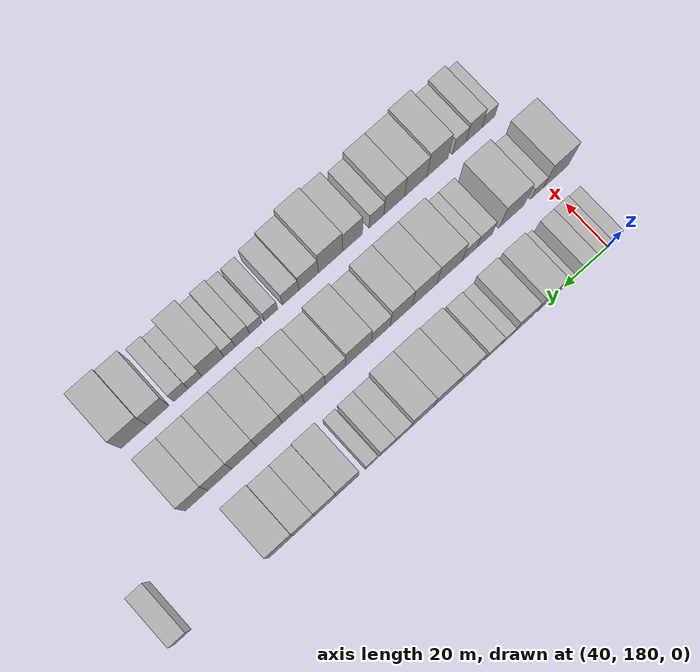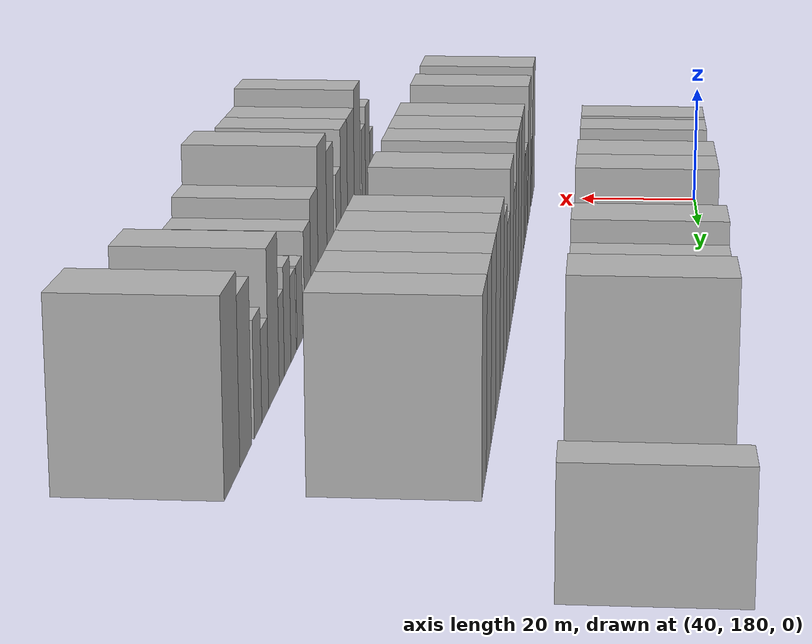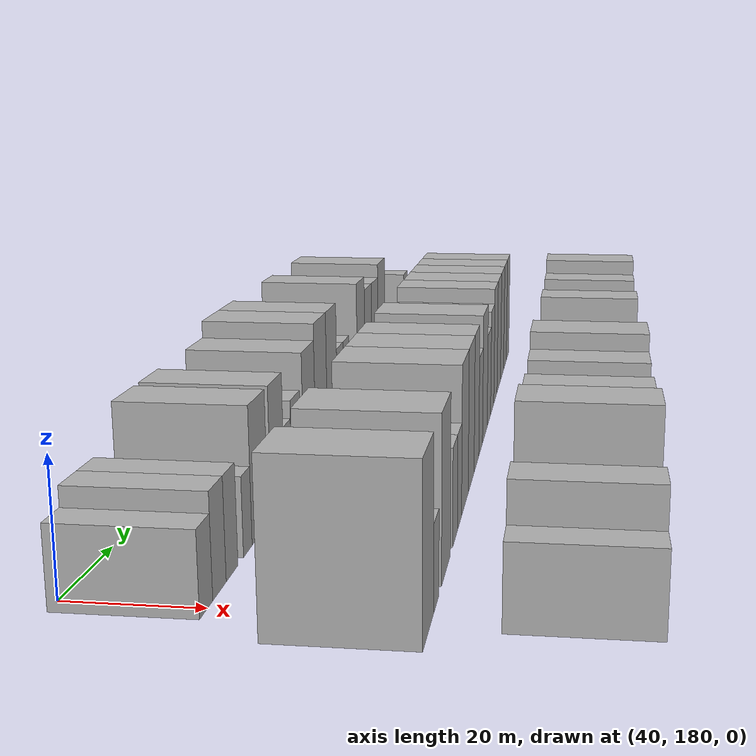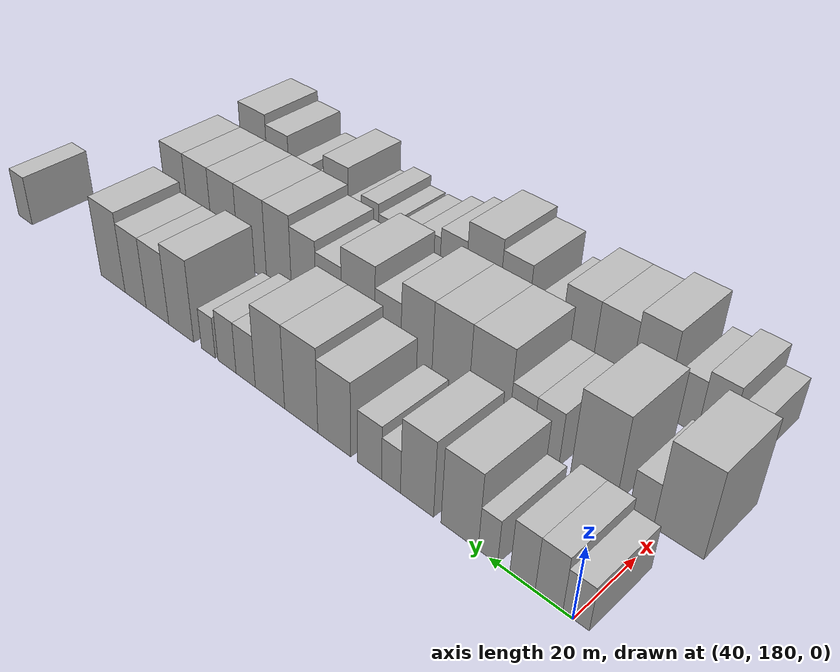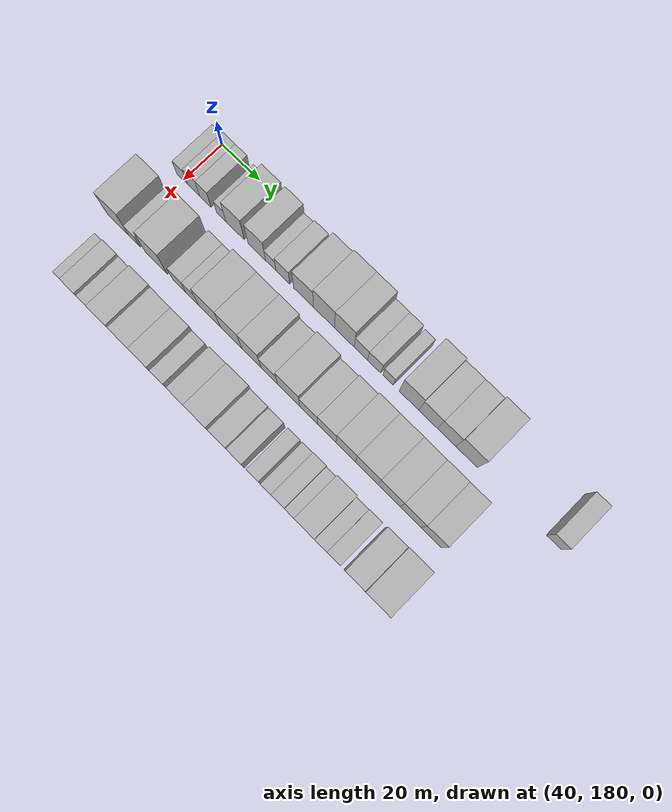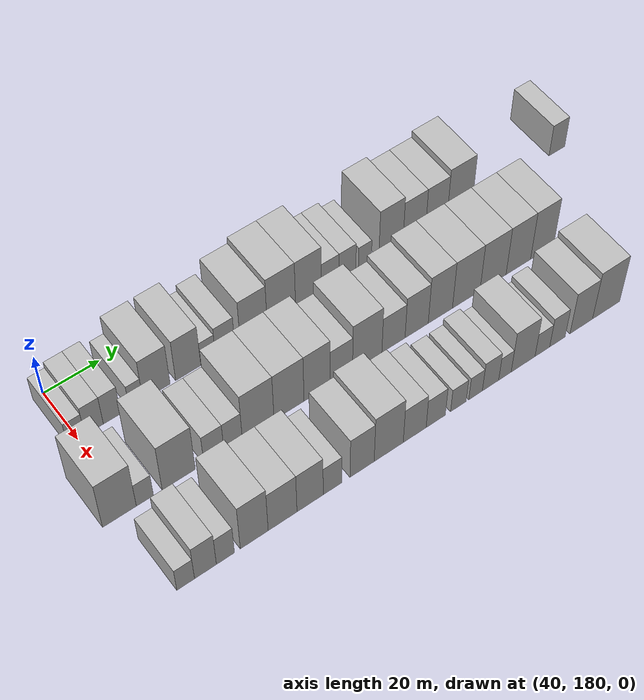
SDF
<sdf version="1.6">
 <world name="default">
  <model name="building_61">
   <static>1</static>
   <pose>50.0000 179.4068 0 0.000000 0.000000 0.000000</pose>
   <link name="link">
    <pose>0 0 6.00 0 0 0</pose>
    <collision name="collision"><geometry><box><size>20.0000 5.9792 12.0000</size></box></geometry></collision>
    <visual name="visual">
     <cast_shadows>0</cast_shadows>
     <geometry><box><size>20.0000 5.9792 12.0000</size></box></geometry>
     <material>
      <script>
       <uri>model://HANNAS_wall/materials/scripts</uri>
       <uri>model://HANNAS_wall/materials/textures</uri>
       <name>vrc/HANNAS_wall</name>
      </script>
     </material>
    </visual>
   </link>
  </model>
  <model name="building_62">
   <static>1</static>
   <pose>50.0000 185.6380 0 0.000000 0.000000 0.000000</pose>
   <link name="link">
    <pose>0 0 7.50 0 0 0</pose>
    <collision name="collision"><geometry><box><size>20.0000 6.4833 15.0000</size></box></geometry></collision>
    <visual name="visual">
     <cast_shadows>0</cast_shadows>
     <geometry><box><size>20.0000 6.4833 15.0000</size></box></geometry>
     <material>
      <script>
       <uri>model://HANNAS_wall/materials/scripts</uri>
       <uri>model://HANNAS_wall/materials/textures</uri>
       <name>vrc/HANNAS_wall</name>
      </script>
     </material>
    </visual>
   </link>
  </model>
  <model name="building_63">
   <static>1</static>
   <pose>50.0000 191.9270 0 0.000000 0.000000 0.000000</pose>
   <link name="link">
    <pose>0 0 7.50 0 0 0</pose>
    <collision name="collision"><geometry><box><size>20.0000 6.0946 15.0000</size></box></geometry></collision>
    <visual name="visual">
     <cast_shadows>0</cast_shadows>
     <geometry><box><size>20.0000 6.0946 15.0000</size></box></geometry>
     <material>
      <script>
       <uri>model://HANNAS_wall/materials/scripts</uri>
       <uri>model://HANNAS_wall/materials/textures</uri>
       <name>vrc/HANNAS_wall</name>
      </script>
     </material>
    </visual>
   </link>
  </model>
  <model name="building_64">
   <static>1</static>
   <pose>50.0000 200.4225 0 0.000000 0.000000 0.000000</pose>
   <link name="link">
    <pose>0 0 6.00 0 0 0</pose>
    <collision name="collision"><geometry><box><size>20.0000 4.8964 12.0000</size></box></geometry></collision>
    <visual name="visual">
     <cast_shadows>0</cast_shadows>
     <geometry><box><size>20.0000 4.8964 12.0000</size></box></geometry>
     <material>
      <script>
       <uri>model://HANNAS_wall/materials/scripts</uri>
       <uri>model://HANNAS_wall/materials/textures</uri>
       <name>vrc/HANNAS_wall</name>
      </script>
     </material>
    </visual>
   </link>
  </model>
  <model name="building_65">
   <static>1</static>
   <pose>50.0000 207.7324 0 0.000000 0.000000 0.000000</pose>
   <link name="link">
    <pose>0 0 10.50 0 0 0</pose>
    <collision name="collision"><geometry><box><size>20.0000 9.7234 21.0000</size></box></geometry></collision>
    <visual name="visual">
     <cast_shadows>0</cast_shadows>
     <geometry><box><size>20.0000 9.7234 21.0000</size></box></geometry>
     <material>
      <script>
       <uri>model://HANNAS_wall/materials/scripts</uri>
       <uri>model://HANNAS_wall/materials/textures</uri>
       <name>vrc/HANNAS_wall</name>
      </script>
     </material>
    </visual>
   </link>
  </model>
  <model name="building_66">
   <static>1</static>
   <pose>50.0000 219.1770 0 0.000000 0.000000 0.000000</pose>
   <link name="link">
    <pose>0 0 10.50 0 0 0</pose>
    <collision name="collision"><geometry><box><size>20.0000 9.1657 21.0000</size></box></geometry></collision>
    <visual name="visual">
     <cast_shadows>0</cast_shadows>
     <geometry><box><size>20.0000 9.1657 21.0000</size></box></geometry>
     <material>
      <script>
       <uri>model://HANNAS_wall/materials/scripts</uri>
       <uri>model://HANNAS_wall/materials/textures</uri>
       <name>vrc/HANNAS_wall</name>
      </script>
     </material>
    </visual>
   </link>
  </model>
  <model name="building_67">
   <static>1</static>
   <pose>50.0000 226.4605 0 0.000000 0.000000 0.000000</pose>
   <link name="link">
    <pose>0 0 6.00 0 0 0</pose>
    <collision name="collision"><geometry><box><size>20.0000 5.4013 12.0000</size></box></geometry></collision>
    <visual name="visual">
     <cast_shadows>0</cast_shadows>
     <geometry><box><size>20.0000 5.4013 12.0000</size></box></geometry>
     <material>
      <script>
       <uri>model://HANNAS_wall/materials/scripts</uri>
       <uri>model://HANNAS_wall/materials/textures</uri>
       <name>vrc/HANNAS_wall</name>
      </script>
     </material>
    </visual>
   </link>
  </model>
  <model name="building_68">
   <static>1</static>
   <pose>50.0000 232.7259 0 0.000000 0.000000 0.000000</pose>
   <link name="link">
    <pose>0 0 7.50 0 0 0</pose>
    <collision name="collision"><geometry><box><size>20.0000 7.1296 15.0000</size></box></geometry></collision>
    <visual name="visual">
     <cast_shadows>0</cast_shadows>
     <geometry><box><size>20.0000 7.1296 15.0000</size></box></geometry>
     <material>
      <script>
       <uri>model://HANNAS_wall/materials/scripts</uri>
       <uri>model://HANNAS_wall/materials/textures</uri>
       <name>vrc/HANNAS_wall</name>
      </script>
     </material>
    </visual>
   </link>
  </model>
  <model name="building_69">
   <static>1</static>
   <pose>50.0000 243.3991 0 0.000000 0.000000 0.000000</pose>
   <link name="link">
    <pose>0 0 10.50 0 0 0</pose>
    <collision name="collision"><geometry><box><size>20.0000 10.2167 21.0000</size></box></geometry></collision>
    <visual name="visual">
     <cast_shadows>0</cast_shadows>
     <geometry><box><size>20.0000 10.2167 21.0000</size></box></geometry>
     <material>
      <script>
       <uri>model://HANNAS_wall/materials/scripts</uri>
       <uri>model://HANNAS_wall/materials/textures</uri>
       <name>vrc/HANNAS_wall</name>
      </script>
     </material>
    </visual>
   </link>
  </model>
  <model name="building_70">
   <static>1</static>
   <pose>50.0000 253.9183 0 0.000000 0.000000 0.000000</pose>
   <link name="link">
    <pose>0 0 12.00 0 0 0</pose>
    <collision name="collision"><geometry><box><size>20.0000 10.8217 24.0000</size></box></geometry></collision>
    <visual name="visual">
     <cast_shadows>0</cast_shadows>
     <geometry><box><size>20.0000 10.8217 24.0000</size></box></geometry>
     <material>
      <script>
       <uri>model://HANNAS_wall/materials/scripts</uri>
       <uri>model://HANNAS_wall/materials/textures</uri>
       <name>vrc/HANNAS_wall</name>
      </script>
     </material>
    </visual>
   </link>
  </model>
  <model name="building_71">
   <static>1</static>
   <pose>50.0000 264.3221 0 0.000000 0.000000 0.000000</pose>
   <link name="link">
    <pose>0 0 12.00 0 0 0</pose>
    <collision name="collision"><geometry><box><size>20.0000 9.9859 24.0000</size></box></geometry></collision>
    <visual name="visual">
     <cast_shadows>0</cast_shadows>
     <geometry><box><size>20.0000 9.9859 24.0000</size></box></geometry>
     <material>
      <script>
       <uri>model://HANNAS_wall/materials/scripts</uri>
       <uri>model://HANNAS_wall/materials/textures</uri>
       <name>vrc/HANNAS_wall</name>
      </script>
     </material>
    </visual>
   </link>
  </model>
  <model name="building_72">
   <static>1</static>
   <pose>50.0000 272.7341 0 0.000000 0.000000 0.000000</pose>
   <link name="link">
    <pose>0 0 7.50 0 0 0</pose>
    <collision name="collision"><geometry><box><size>20.0000 6.8380 15.0000</size></box></geometry></collision>
    <visual name="visual">
     <cast_shadows>0</cast_shadows>
     <geometry><box><size>20.0000 6.8380 15.0000</size></box></geometry>
     <material>
      <script>
       <uri>model://HANNAS_wall/materials/scripts</uri>
       <uri>model://HANNAS_wall/materials/textures</uri>
       <name>vrc/HANNAS_wall</name>
      </script>
     </material>
    </visual>
   </link>
  </model>
  <model name="building_73">
   <static>1</static>
   <pose>50.0000 279.4565 0 0.000000 0.000000 0.000000</pose>
   <link name="link">
    <pose>0 0 7.50 0 0 0</pose>
    <collision name="collision"><geometry><box><size>20.0000 6.6070 15.0000</size></box></geometry></collision>
    <visual name="visual">
     <cast_shadows>0</cast_shadows>
     <geometry><box><size>20.0000 6.6070 15.0000</size></box></geometry>
     <material>
      <script>
       <uri>model://HANNAS_wall/materials/scripts</uri>
       <uri>model://HANNAS_wall/materials/textures</uri>
       <name>vrc/HANNAS_wall</name>
      </script>
     </material>
    </visual>
   </link>
  </model>
  <model name="building_74">
   <static>1</static>
   <pose>50.0000 286.3428 0 0.000000 0.000000 0.000000</pose>
   <link name="link">
    <pose>0 0 6.00 0 0 0</pose>
    <collision name="collision"><geometry><box><size>20.0000 5.1656 12.0000</size></box></geometry></collision>
    <visual name="visual">
     <cast_shadows>0</cast_shadows>
     <geometry><box><size>20.0000 5.1656 12.0000</size></box></geometry>
     <material>
      <script>
       <uri>model://HANNAS_wall/materials/scripts</uri>
       <uri>model://HANNAS_wall/materials/textures</uri>
       <name>vrc/HANNAS_wall</name>
      </script>
     </material>
    </visual>
   </link>
  </model>
  <model name="building_75">
   <static>1</static>
   <pose>50.0000 296.7853 0 0.000000 0.000000 0.000000</pose>
   <link name="link">
    <pose>0 0 12.00 0 0 0</pose>
    <collision name="collision"><geometry><box><size>20.0000 9.7195 24.0000</size></box></geometry></collision>
    <visual name="visual">
     <cast_shadows>0</cast_shadows>
     <geometry><box><size>20.0000 9.7195 24.0000</size></box></geometry>
     <material>
      <script>
       <uri>model://HANNAS_wall/materials/scripts</uri>
       <uri>model://HANNAS_wall/materials/textures</uri>
       <name>vrc/HANNAS_wall</name>
      </script>
     </material>
    </visual>
   </link>
  </model>
  <model name="building_76">
   <static>1</static>
   <pose>50.0000 306.2519 0 0.000000 0.000000 0.000000</pose>
   <link name="link">
    <pose>0 0 10.50 0 0 0</pose>
    <collision name="collision"><geometry><box><size>20.0000 9.2137 21.0000</size></box></geometry></collision>
    <visual name="visual">
     <cast_shadows>0</cast_shadows>
     <geometry><box><size>20.0000 9.2137 21.0000</size></box></geometry>
     <material>
      <script>
       <uri>model://HANNAS_wall/materials/scripts</uri>
       <uri>model://HANNAS_wall/materials/textures</uri>
       <name>vrc/HANNAS_wall</name>
      </script>
     </material>
    </visual>
   </link>
  </model>
  <model name="building_77">
   <static>1</static>
   <pose>50.0000 315.3175 0 0.000000 0.000000 0.000000</pose>
   <link name="link">
    <pose>0 0 10.50 0 0 0</pose>
    <collision name="collision"><geometry><box><size>20.0000 8.9175 21.0000</size></box></geometry></collision>
    <visual name="visual">
     <cast_shadows>0</cast_shadows>
     <geometry><box><size>20.0000 8.9175 21.0000</size></box></geometry>
     <material>
      <script>
       <uri>model://HANNAS_wall/materials/scripts</uri>
       <uri>model://HANNAS_wall/materials/textures</uri>
       <name>vrc/HANNAS_wall</name>
      </script>
     </material>
    </visual>
   </link>
  </model>
  <model name="building_78">
   <static>1</static>
   <pose>50.0000 325.0441 0 0.000000 0.000000 0.000000</pose>
   <link name="link">
    <pose>0 0 12.00 0 0 0</pose>
    <collision name="collision"><geometry><box><size>20.0000 10.5357 24.0000</size></box></geometry></collision>
    <visual name="visual">
     <cast_shadows>0</cast_shadows>
     <geometry><box><size>20.0000 10.5357 24.0000</size></box></geometry>
     <material>
      <script>
       <uri>model://HANNAS_wall/materials/scripts</uri>
       <uri>model://HANNAS_wall/materials/textures</uri>
       <name>vrc/HANNAS_wall</name>
      </script>
     </material>
    </visual>
   </link>
  </model>
  <model name="building_79">
   <static>1</static>
   <pose>50.0000 366.6087 0 0.000000 0.000000 0.000000</pose>
   <link name="link">
    <pose>0 0 7.50 0 0 0</pose>
    <collision name="collision"><geometry><box><size>20.0000 6.8645 15.0000</size></box></geometry></collision>
    <visual name="visual">
     <cast_shadows>0</cast_shadows>
     <geometry><box><size>20.0000 6.8645 15.0000</size></box></geometry>
     <material>
      <script>
       <uri>model://HANNAS_wall/materials/scripts</uri>
       <uri>model://HANNAS_wall/materials/textures</uri>
       <name>vrc/HANNAS_wall</name>
      </script>
     </material>
    </visual>
   </link>
  </model>
  <model name="building_133">
   <static>1</static>
   <pose>79.0000 176.2085 0 0.000000 0.000000 0.000000</pose>
   <link name="link">
    <pose>0 0 12.00 0 0 0</pose>
    <collision name="collision"><geometry><box><size>20.0000 11.4571 24.0000</size></box></geometry></collision>
    <visual name="visual">
     <cast_shadows>0</cast_shadows>
     <geometry><box><size>20.0000 11.4571 24.0000</size></box></geometry>
     <material>
      <script>
       <uri>model://HANNAS_wall/materials/scripts</uri>
       <uri>model://HANNAS_wall/materials/textures</uri>
       <name>vrc/HANNAS_wall</name>
      </script>
     </material>
    </visual>
   </link>
  </model>
  <model name="building_134">
   <static>1</static>
   <pose>79.0000 184.8714 0 0.000000 0.000000 0.000000</pose>
   <link name="link">
    <pose>0 0 6.00 0 0 0</pose>
    <collision name="collision"><geometry><box><size>20.0000 5.8687 12.0000</size></box></geometry></collision>
    <visual name="visual">
     <cast_shadows>0</cast_shadows>
     <geometry><box><size>20.0000 5.8687 12.0000</size></box></geometry>
     <material>
      <script>
       <uri>model://HANNAS_wall/materials/scripts</uri>
       <uri>model://HANNAS_wall/materials/textures</uri>
       <name>vrc/HANNAS_wall</name>
      </script>
     </material>
    </visual>
   </link>
  </model>
  <model name="building_135">
   <static>1</static>
   <pose>79.0000 196.5818 0 0.000000 0.000000 0.000000</pose>
   <link name="link">
    <pose>0 0 12.00 0 0 0</pose>
    <collision name="collision"><geometry><box><size>20.0000 11.5522 24.0000</size></box></geometry></collision>
    <visual name="visual">
     <cast_shadows>0</cast_shadows>
     <geometry><box><size>20.0000 11.5522 24.0000</size></box></geometry>
     <material>
      <script>
       <uri>model://HANNAS_wall/materials/scripts</uri>
       <uri>model://HANNAS_wall/materials/textures</uri>
       <name>vrc/HANNAS_wall</name>
      </script>
     </material>
    </visual>
   </link>
  </model>
  <model name="building_136">
   <static>1</static>
   <pose>79.0000 208.9275 0 0.000000 0.000000 0.000000</pose>
   <link name="link">
    <pose>0 0 7.50 0 0 0</pose>
    <collision name="collision"><geometry><box><size>20.0000 7.1390 15.0000</size></box></geometry></collision>
    <visual name="visual">
     <cast_shadows>0</cast_shadows>
     <geometry><box><size>20.0000 7.1390 15.0000</size></box></geometry>
     <material>
      <script>
       <uri>model://HANNAS_wall/materials/scripts</uri>
       <uri>model://HANNAS_wall/materials/textures</uri>
       <name>vrc/HANNAS_wall</name>
      </script>
     </material>
    </visual>
   </link>
  </model>
  <model name="building_137">
   <static>1</static>
   <pose>79.0000 215.7844 0 0.000000 0.000000 0.000000</pose>
   <link name="link">
    <pose>0 0 7.50 0 0 0</pose>
    <collision name="collision"><geometry><box><size>20.0000 6.5748 15.0000</size></box></geometry></collision>
    <visual name="visual">
     <cast_shadows>0</cast_shadows>
     <geometry><box><size>20.0000 6.5748 15.0000</size></box></geometry>
     <material>
      <script>
       <uri>model://HANNAS_wall/materials/scripts</uri>
       <uri>model://HANNAS_wall/materials/textures</uri>
       <name>vrc/HANNAS_wall</name>
      </script>
     </material>
    </visual>
   </link>
  </model>
  <model name="building_138">
   <static>1</static>
   <pose>79.0000 224.8196 0 0.000000 0.000000 0.000000</pose>
   <link name="link">
    <pose>0 0 12.00 0 0 0</pose>
    <collision name="collision"><geometry><box><size>20.0000 11.4956 24.0000</size></box></geometry></collision>
    <visual name="visual">
     <cast_shadows>0</cast_shadows>
     <geometry><box><size>20.0000 11.4956 24.0000</size></box></geometry>
     <material>
      <script>
       <uri>model://HANNAS_wall/materials/scripts</uri>
       <uri>model://HANNAS_wall/materials/textures</uri>
       <name>vrc/HANNAS_wall</name>
      </script>
     </material>
    </visual>
   </link>
  </model>
  <model name="building_139">
   <static>1</static>
   <pose>79.0000 236.0752 0 0.000000 0.000000 0.000000</pose>
   <link name="link">
    <pose>0 0 12.00 0 0 0</pose>
    <collision name="collision"><geometry><box><size>20.0000 11.0156 24.0000</size></box></geometry></collision>
    <visual name="visual">
     <cast_shadows>0</cast_shadows>
     <geometry><box><size>20.0000 11.0156 24.0000</size></box></geometry>
     <material>
      <script>
       <uri>model://HANNAS_wall/materials/scripts</uri>
       <uri>model://HANNAS_wall/materials/textures</uri>
       <name>vrc/HANNAS_wall</name>
      </script>
     </material>
    </visual>
   </link>
  </model>
  <model name="building_140">
   <static>1</static>
   <pose>79.0000 246.4710 0 0.000000 0.000000 0.000000</pose>
   <link name="link">
    <pose>0 0 12.00 0 0 0</pose>
    <collision name="collision"><geometry><box><size>20.0000 9.7760 24.0000</size></box></geometry></collision>
    <visual name="visual">
     <cast_shadows>0</cast_shadows>
     <geometry><box><size>20.0000 9.7760 24.0000</size></box></geometry>
     <material>
      <script>
       <uri>model://HANNAS_wall/materials/scripts</uri>
       <uri>model://HANNAS_wall/materials/textures</uri>
       <name>vrc/HANNAS_wall</name>
      </script>
     </material>
    </visual>
   </link>
  </model>
  <model name="building_141">
   <static>1</static>
   <pose>79.0000 255.5567 0 0.000000 0.000000 0.000000</pose>
   <link name="link">
    <pose>0 0 9.00 0 0 0</pose>
    <collision name="collision"><geometry><box><size>20.0000 8.3955 18.0000</size></box></geometry></collision>
    <visual name="visual">
     <cast_shadows>0</cast_shadows>
     <geometry><box><size>20.0000 8.3955 18.0000</size></box></geometry>
     <material>
      <script>
       <uri>model://HANNAS_wall/materials/scripts</uri>
       <uri>model://HANNAS_wall/materials/textures</uri>
       <name>vrc/HANNAS_wall</name>
      </script>
     </material>
    </visual>
   </link>
  </model>
  <model name="building_142">
   <static>1</static>
   <pose>79.0000 265.3767 0 0.000000 0.000000 0.000000</pose>
   <link name="link">
    <pose>0 0 12.00 0 0 0</pose>
    <collision name="collision"><geometry><box><size>20.0000 11.2445 24.0000</size></box></geometry></collision>
    <visual name="visual">
     <cast_shadows>0</cast_shadows>
     <geometry><box><size>20.0000 11.2445 24.0000</size></box></geometry>
     <material>
      <script>
       <uri>model://HANNAS_wall/materials/scripts</uri>
       <uri>model://HANNAS_wall/materials/textures</uri>
       <name>vrc/HANNAS_wall</name>
      </script>
     </material>
    </visual>
   </link>
  </model>
  <model name="building_143">
   <static>1</static>
   <pose>79.0000 275.4838 0 0.000000 0.000000 0.000000</pose>
   <link name="link">
    <pose>0 0 9.00 0 0 0</pose>
    <collision name="collision"><geometry><box><size>20.0000 8.9698 18.0000</size></box></geometry></collision>
    <visual name="visual">
     <cast_shadows>0</cast_shadows>
     <geometry><box><size>20.0000 8.9698 18.0000</size></box></geometry>
     <material>
      <script>
       <uri>model://HANNAS_wall/materials/scripts</uri>
       <uri>model://HANNAS_wall/materials/textures</uri>
       <name>vrc/HANNAS_wall</name>
      </script>
     </material>
    </visual>
   </link>
  </model>
  <model name="building_144">
   <static>1</static>
   <pose>79.0000 284.5198 0 0.000000 0.000000 0.000000</pose>
   <link name="link">
    <pose>0 0 10.50 0 0 0</pose>
    <collision name="collision"><geometry><box><size>20.0000 9.1021 21.0000</size></box></geometry></collision>
    <visual name="visual">
     <cast_shadows>0</cast_shadows>
     <geometry><box><size>20.0000 9.1021 21.0000</size></box></geometry>
     <material>
      <script>
       <uri>model://HANNAS_wall/materials/scripts</uri>
       <uri>model://HANNAS_wall/materials/textures</uri>
       <name>vrc/HANNAS_wall</name>
      </script>
     </material>
    </visual>
   </link>
  </model>
  <model name="building_145">
   <static>1</static>
   <pose>79.0000 293.8777 0 0.000000 0.000000 0.000000</pose>
   <link name="link">
    <pose>0 0 12.00 0 0 0</pose>
    <collision name="collision"><geometry><box><size>20.0000 9.6137 24.0000</size></box></geometry></collision>
    <visual name="visual">
     <cast_shadows>0</cast_shadows>
     <geometry><box><size>20.0000 9.6137 24.0000</size></box></geometry>
     <material>
      <script>
       <uri>model://HANNAS_wall/materials/scripts</uri>
       <uri>model://HANNAS_wall/materials/textures</uri>
       <name>vrc/HANNAS_wall</name>
      </script>
     </material>
    </visual>
   </link>
  </model>
  <model name="building_146">
   <static>1</static>
   <pose>79.0000 304.2224 0 0.000000 0.000000 0.000000</pose>
   <link name="link">
    <pose>0 0 12.00 0 0 0</pose>
    <collision name="collision"><geometry><box><size>20.0000 11.0757 24.0000</size></box></geometry></collision>
    <visual name="visual">
     <cast_shadows>0</cast_shadows>
     <geometry><box><size>20.0000 11.0757 24.0000</size></box></geometry>
     <material>
      <script>
       <uri>model://HANNAS_wall/materials/scripts</uri>
       <uri>model://HANNAS_wall/materials/textures</uri>
       <name>vrc/HANNAS_wall</name>
      </script>
     </material>
    </visual>
   </link>
  </model>
  <model name="building_147">
   <static>1</static>
   <pose>79.0000 315.0806 0 0.000000 0.000000 0.000000</pose>
   <link name="link">
    <pose>0 0 12.00 0 0 0</pose>
    <collision name="collision"><geometry><box><size>20.0000 10.6407 24.0000</size></box></geometry></collision>
    <visual name="visual">
     <cast_shadows>0</cast_shadows>
     <geometry><box><size>20.0000 10.6407 24.0000</size></box></geometry>
     <material>
      <script>
       <uri>model://HANNAS_wall/materials/scripts</uri>
       <uri>model://HANNAS_wall/materials/textures</uri>
       <name>vrc/HANNAS_wall</name>
      </script>
     </material>
    </visual>
   </link>
  </model>
  <model name="building_148">
   <static>1</static>
   <pose>79.0000 325.4704 0 0.000000 0.000000 0.000000</pose>
   <link name="link">
    <pose>0 0 12.00 0 0 0</pose>
    <collision name="collision"><geometry><box><size>20.0000 10.1390 24.0000</size></box></geometry></collision>
    <visual name="visual">
     <cast_shadows>0</cast_shadows>
     <geometry><box><size>20.0000 10.1390 24.0000</size></box></geometry>
     <material>
      <script>
       <uri>model://HANNAS_wall/materials/scripts</uri>
       <uri>model://HANNAS_wall/materials/textures</uri>
       <name>vrc/HANNAS_wall</name>
      </script>
     </material>
    </visual>
   </link>
  </model>
  <model name="building_149">
   <static>1</static>
   <pose>79.0000 335.3739 0 0.000000 0.000000 0.000000</pose>
   <link name="link">
    <pose>0 0 12.00 0 0 0</pose>
    <collision name="collision"><geometry><box><size>20.0000 9.6681 24.0000</size></box></geometry></collision>
    <visual name="visual">
     <cast_shadows>0</cast_shadows>
     <geometry><box><size>20.0000 9.6681 24.0000</size></box></geometry>
     <material>
      <script>
       <uri>model://HANNAS_wall/materials/scripts</uri>
       <uri>model://HANNAS_wall/materials/textures</uri>
       <name>vrc/HANNAS_wall</name>
      </script>
     </material>
    </visual>
   </link>
  </model>
  <model name="building_206">
   <static>1</static>
   <pose>108.0000 179.7271 0 0.000000 0.000000 0.000000</pose>
   <link name="link">
    <pose>0 0 6.00 0 0 0</pose>
    <collision name="collision"><geometry><box><size>20.0000 5.9654 12.0000</size></box></geometry></collision>
    <visual name="visual">
     <cast_shadows>0</cast_shadows>
     <geometry><box><size>20.0000 5.9654 12.0000</size></box></geometry>
     <material>
      <script>
       <uri>model://HANNAS_wall/materials/scripts</uri>
       <uri>model://HANNAS_wall/materials/textures</uri>
       <name>vrc/HANNAS_wall</name>
      </script>
     </material>
    </visual>
   </link>
  </model>
  <model name="building_207">
   <static>1</static>
   <pose>108.0000 186.4126 0 0.000000 0.000000 0.000000</pose>
   <link name="link">
    <pose>0 0 9.00 0 0 0</pose>
    <collision name="collision"><geometry><box><size>20.0000 7.4055 18.0000</size></box></geometry></collision>
    <visual name="visual">
     <cast_shadows>0</cast_shadows>
     <geometry><box><size>20.0000 7.4055 18.0000</size></box></geometry>
     <material>
      <script>
       <uri>model://HANNAS_wall/materials/scripts</uri>
       <uri>model://HANNAS_wall/materials/textures</uri>
       <name>vrc/HANNAS_wall</name>
      </script>
     </material>
    </visual>
   </link>
  </model>
  <model name="building_208">
   <static>1</static>
   <pose>108.0000 193.2049 0 0.000000 0.000000 0.000000</pose>
   <link name="link">
    <pose>0 0 7.50 0 0 0</pose>
    <collision name="collision"><geometry><box><size>20.0000 6.1791 15.0000</size></box></geometry></collision>
    <visual name="visual">
     <cast_shadows>0</cast_shadows>
     <geometry><box><size>20.0000 6.1791 15.0000</size></box></geometry>
     <material>
      <script>
       <uri>model://HANNAS_wall/materials/scripts</uri>
       <uri>model://HANNAS_wall/materials/textures</uri>
       <name>vrc/HANNAS_wall</name>
      </script>
     </material>
    </visual>
   </link>
  </model>
  <model name="building_209">
   <static>1</static>
   <pose>108.0000 203.1337 0 0.000000 0.000000 0.000000</pose>
   <link name="link">
    <pose>0 0 12.00 0 0 0</pose>
    <collision name="collision"><geometry><box><size>20.0000 9.6785 24.0000</size></box></geometry></collision>
    <visual name="visual">
     <cast_shadows>0</cast_shadows>
     <geometry><box><size>20.0000 9.6785 24.0000</size></box></geometry>
     <material>
      <script>
       <uri>model://HANNAS_wall/materials/scripts</uri>
       <uri>model://HANNAS_wall/materials/textures</uri>
       <name>vrc/HANNAS_wall</name>
      </script>
     </material>
    </visual>
   </link>
  </model>
  <model name="building_210">
   <static>1</static>
   <pose>108.0000 213.0365 0 0.000000 0.000000 0.000000</pose>
   <link name="link">
    <pose>0 0 10.50 0 0 0</pose>
    <collision name="collision"><geometry><box><size>20.0000 10.1273 21.0000</size></box></geometry></collision>
    <visual name="visual">
     <cast_shadows>0</cast_shadows>
     <geometry><box><size>20.0000 10.1273 21.0000</size></box></geometry>
     <material>
      <script>
       <uri>model://HANNAS_wall/materials/scripts</uri>
       <uri>model://HANNAS_wall/materials/textures</uri>
       <name>vrc/HANNAS_wall</name>
      </script>
     </material>
    </visual>
   </link>
  </model>
  <model name="building_211">
   <static>1</static>
   <pose>108.0000 222.7827 0 0.000000 0.000000 0.000000</pose>
   <link name="link">
    <pose>0 0 10.50 0 0 0</pose>
    <collision name="collision"><geometry><box><size>20.0000 9.3651 21.0000</size></box></geometry></collision>
    <visual name="visual">
     <cast_shadows>0</cast_shadows>
     <geometry><box><size>20.0000 9.3651 21.0000</size></box></geometry>
     <material>
      <script>
       <uri>model://HANNAS_wall/materials/scripts</uri>
       <uri>model://HANNAS_wall/materials/textures</uri>
       <name>vrc/HANNAS_wall</name>
      </script>
     </material>
    </visual>
   </link>
  </model>
  <model name="building_212">
   <static>1</static>
   <pose>108.0000 230.7986 0 0.000000 0.000000 0.000000</pose>
   <link name="link">
    <pose>0 0 7.50 0 0 0</pose>
    <collision name="collision"><geometry><box><size>20.0000 6.6667 15.0000</size></box></geometry></collision>
    <visual name="visual">
     <cast_shadows>0</cast_shadows>
     <geometry><box><size>20.0000 6.6667 15.0000</size></box></geometry>
     <material>
      <script>
       <uri>model://HANNAS_wall/materials/scripts</uri>
       <uri>model://HANNAS_wall/materials/textures</uri>
       <name>vrc/HANNAS_wall</name>
      </script>
     </material>
    </visual>
   </link>
  </model>
  <model name="building_213">
   <static>1</static>
   <pose>108.0000 241.5536 0 0.000000 0.000000 0.000000</pose>
   <link name="link">
    <pose>0 0 10.50 0 0 0</pose>
    <collision name="collision"><geometry><box><size>20.0000 8.8434 21.0000</size></box></geometry></collision>
    <visual name="visual">
     <cast_shadows>0</cast_shadows>
     <geometry><box><size>20.0000 8.8434 21.0000</size></box></geometry>
     <material>
      <script>
       <uri>model://HANNAS_wall/materials/scripts</uri>
       <uri>model://HANNAS_wall/materials/textures</uri>
       <name>vrc/HANNAS_wall</name>
      </script>
     </material>
    </visual>
   </link>
  </model>
  <model name="building_214">
   <static>1</static>
   <pose>108.0000 251.3690 0 0.000000 0.000000 0.000000</pose>
   <link name="link">
    <pose>0 0 12.00 0 0 0</pose>
    <collision name="collision"><geometry><box><size>20.0000 10.7873 24.0000</size></box></geometry></collision>
    <visual name="visual">
     <cast_shadows>0</cast_shadows>
     <geometry><box><size>20.0000 10.7873 24.0000</size></box></geometry>
     <material>
      <script>
       <uri>model://HANNAS_wall/materials/scripts</uri>
       <uri>model://HANNAS_wall/materials/textures</uri>
       <name>vrc/HANNAS_wall</name>
      </script>
     </material>
    </visual>
   </link>
  </model>
  <model name="building_215">
   <static>1</static>
   <pose>108.0000 261.0643 0 0.000000 0.000000 0.000000</pose>
   <link name="link">
    <pose>0 0 9.00 0 0 0</pose>
    <collision name="collision"><geometry><box><size>20.0000 8.6034 18.0000</size></box></geometry></collision>
    <visual name="visual">
     <cast_shadows>0</cast_shadows>
     <geometry><box><size>20.0000 8.6034 18.0000</size></box></geometry>
     <material>
      <script>
       <uri>model://HANNAS_wall/materials/scripts</uri>
       <uri>model://HANNAS_wall/materials/textures</uri>
       <name>vrc/HANNAS_wall</name>
      </script>
     </material>
    </visual>
   </link>
  </model>
  <model name="building_216">
   <static>1</static>
   <pose>108.0000 269.0234 0 0.000000 0.000000 0.000000</pose>
   <link name="link">
    <pose>0 0 7.50 0 0 0</pose>
    <collision name="collision"><geometry><box><size>20.0000 7.3148 15.0000</size></box></geometry></collision>
    <visual name="visual">
     <cast_shadows>0</cast_shadows>
     <geometry><box><size>20.0000 7.3148 15.0000</size></box></geometry>
     <material>
      <script>
       <uri>model://HANNAS_wall/materials/scripts</uri>
       <uri>model://HANNAS_wall/materials/textures</uri>
       <name>vrc/HANNAS_wall</name>
      </script>
     </material>
    </visual>
   </link>
  </model>
  <model name="building_217">
   <static>1</static>
   <pose>108.0000 277.6686 0 0.000000 0.000000 0.000000</pose>
   <link name="link">
    <pose>0 0 6.00 0 0 0</pose>
    <collision name="collision"><geometry><box><size>20.0000 5.9757 12.0000</size></box></geometry></collision>
    <visual name="visual">
     <cast_shadows>0</cast_shadows>
     <geometry><box><size>20.0000 5.9757 12.0000</size></box></geometry>
     <material>
      <script>
       <uri>model://HANNAS_wall/materials/scripts</uri>
       <uri>model://HANNAS_wall/materials/textures</uri>
       <name>vrc/HANNAS_wall</name>
      </script>
     </material>
    </visual>
   </link>
  </model>
  <model name="building_218">
   <static>1</static>
   <pose>108.0000 284.2966 0 0.000000 0.000000 0.000000</pose>
   <link name="link">
    <pose>0 0 6.00 0 0 0</pose>
    <collision name="collision"><geometry><box><size>20.0000 5.2802 12.0000</size></box></geometry></collision>
    <visual name="visual">
     <cast_shadows>0</cast_shadows>
     <geometry><box><size>20.0000 5.2802 12.0000</size></box></geometry>
     <material>
      <script>
       <uri>model://HANNAS_wall/materials/scripts</uri>
       <uri>model://HANNAS_wall/materials/textures</uri>
       <name>vrc/HANNAS_wall</name>
      </script>
     </material>
    </visual>
   </link>
  </model>
  <model name="building_219">
   <static>1</static>
   <pose>108.0000 290.1320 0 0.000000 0.000000 0.000000</pose>
   <link name="link">
    <pose>0 0 7.50 0 0 0</pose>
    <collision name="collision"><geometry><box><size>20.0000 6.3907 15.0000</size></box></geometry></collision>
    <visual name="visual">
     <cast_shadows>0</cast_shadows>
     <geometry><box><size>20.0000 6.3907 15.0000</size></box></geometry>
     <material>
      <script>
       <uri>model://HANNAS_wall/materials/scripts</uri>
       <uri>model://HANNAS_wall/materials/textures</uri>
       <name>vrc/HANNAS_wall</name>
      </script>
     </material>
    </visual>
   </link>
  </model>
  <model name="building_220">
   <static>1</static>
   <pose>108.0000 295.7857 0 0.000000 0.000000 0.000000</pose>
   <link name="link">
    <pose>0 0 6.00 0 0 0</pose>
    <collision name="collision"><geometry><box><size>20.0000 4.9167 12.0000</size></box></geometry></collision>
    <visual name="visual">
     <cast_shadows>0</cast_shadows>
     <geometry><box><size>20.0000 4.9167 12.0000</size></box></geometry>
     <material>
      <script>
       <uri>model://HANNAS_wall/materials/scripts</uri>
       <uri>model://HANNAS_wall/materials/textures</uri>
       <name>vrc/HANNAS_wall</name>
      </script>
     </material>
    </visual>
   </link>
  </model>
  <model name="building_221">
   <static>1</static>
   <pose>108.0000 302.9919 0 0.000000 0.000000 0.000000</pose>
   <link name="link">
    <pose>0 0 10.50 0 0 0</pose>
    <collision name="collision"><geometry><box><size>20.0000 9.4957 21.0000</size></box></geometry></collision>
    <visual name="visual">
     <cast_shadows>0</cast_shadows>
     <geometry><box><size>20.0000 9.4957 21.0000</size></box></geometry>
     <material>
      <script>
       <uri>model://HANNAS_wall/materials/scripts</uri>
       <uri>model://HANNAS_wall/materials/textures</uri>
       <name>vrc/HANNAS_wall</name>
      </script>
     </material>
    </visual>
   </link>
  </model>
  <model name="building_222">
   <static>1</static>
   <pose>108.0000 310.6967 0 0.000000 0.000000 0.000000</pose>
   <link name="link">
    <pose>0 0 6.00 0 0 0</pose>
    <collision name="collision"><geometry><box><size>20.0000 5.9138 12.0000</size></box></geometry></collision>
    <visual name="visual">
     <cast_shadows>0</cast_shadows>
     <geometry><box><size>20.0000 5.9138 12.0000</size></box></geometry>
     <material>
      <script>
       <uri>model://HANNAS_wall/materials/scripts</uri>
       <uri>model://HANNAS_wall/materials/textures</uri>
       <name>vrc/HANNAS_wall</name>
      </script>
     </material>
    </visual>
   </link>
  </model>
  <model name="building_223">
   <static>1</static>
   <pose>108.0000 316.7701 0 0.000000 0.000000 0.000000</pose>
   <link name="link">
    <pose>0 0 7.50 0 0 0</pose>
    <collision name="collision"><geometry><box><size>20.0000 6.2331 15.0000</size></box></geometry></collision>
    <visual name="visual">
     <cast_shadows>0</cast_shadows>
     <geometry><box><size>20.0000 6.2331 15.0000</size></box></geometry>
     <material>
      <script>
       <uri>model://HANNAS_wall/materials/scripts</uri>
       <uri>model://HANNAS_wall/materials/textures</uri>
       <name>vrc/HANNAS_wall</name>
      </script>
     </material>
    </visual>
   </link>
  </model>
  <model name="building_224">
   <static>1</static>
   <pose>108.0000 326.5037 0 0.000000 0.000000 0.000000</pose>
   <link name="link">
    <pose>0 0 10.50 0 0 0</pose>
    <collision name="collision"><geometry><box><size>20.0000 9.2341 21.0000</size></box></geometry></collision>
    <visual name="visual">
     <cast_shadows>0</cast_shadows>
     <geometry><box><size>20.0000 9.2341 21.0000</size></box></geometry>
     <material>
      <script>
       <uri>model://HANNAS_wall/materials/scripts</uri>
       <uri>model://HANNAS_wall/materials/textures</uri>
       <name>vrc/HANNAS_wall</name>
      </script>
     </material>
    </visual>
   </link>
  </model>
  <model name="building_225">
   <static>1</static>
   <pose>108.0000 336.7544 0 0.000000 0.000000 0.000000</pose>
   <link name="link">
    <pose>0 0 12.00 0 0 0</pose>
    <collision name="collision"><geometry><box><size>20.0000 11.2673 24.0000</size></box></geometry></collision>
    <visual name="visual">
     <cast_shadows>0</cast_shadows>
     <geometry><box><size>20.0000 11.2673 24.0000</size></box></geometry>
     <material>
      <script>
       <uri>model://HANNAS_wall/materials/scripts</uri>
       <uri>model://HANNAS_wall/materials/textures</uri>
       <name>vrc/HANNAS_wall</name>
      </script>
     </material>
    </visual>
   </link>
  </model>
 </world>
</sdf>
